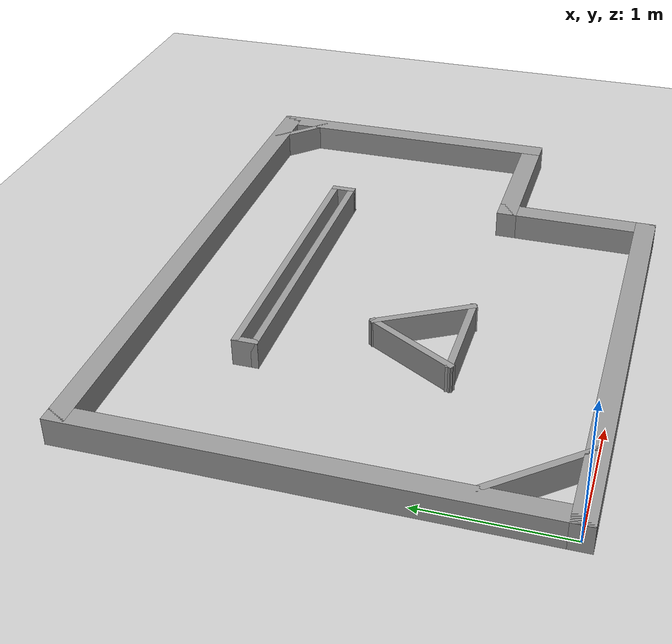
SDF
<sdf version="1.6">
 <world name="default">
  <light name="sun" type="directional">
   <pose>0 0 10 0 -0 0</pose>
   <diffuse>0.8 0.8 0.8 1</diffuse>
   <specular>0.1 0.1 0.1 1</specular>
   <attenuation>
    <range>1000</range>
    <constant>0.9</constant>
    <linear>0.01</linear>
    <quadratic>0.001</quadratic>
   </attenuation>
   <direction>-0.5 0.5 -1</direction>
  </light>
  <model name="ground_plane">
   <static>1</static>
   <link name="link">
    <collision name="collision">
     <geometry><plane><normal>0 0 1</normal><size>100 100</size></plane></geometry>
     <surface><friction><ode><mu>100</mu><mu2>50</mu2></ode></friction></surface>
    </collision>
    <visual name="visual">
     <cast_shadows>0</cast_shadows>
     <geometry><plane><normal>0 0 1</normal><size>100 100</size></plane></geometry>
     <material>
      <script><uri>file://media/materials/scripts/gazebo.material</uri><name>Gazebo/Grey</name></script>
     </material>
    </visual>
   </link>
  </model>
  <gravity>0 0 -9.8</gravity>
  <magnetic_field>6e-06 2.3e-05 -4.2e-05</magnetic_field>
  <atmosphere type="adiabatic"/>
  <physics name="default_physics" default="0" type="ode">
   <max_step_size>0.001</max_step_size>
   <real_time_factor>1</real_time_factor>
   <real_time_update_rate>1000</real_time_update_rate>
  </physics>
  <scene><ambient>0.4 0.4 0.4 1</ambient><background>0.7 0.7 0.7 1</background><shadows>1</shadows></scene>
  <spherical_coordinates>
   <surface_model>EARTH_WGS84</surface_model>
   <latitude_deg>0</latitude_deg>
   <longitude_deg>0</longitude_deg>
   <elevation>0</elevation>
   <heading_deg>0</heading_deg>
  </spherical_coordinates>
  <model name="rssmap">
   <pose>2.125 1.6 0 0 -0 0</pose>
   <link name="Wall_37">
    <collision name="Wall_37_Collision">
     <geometry><box><size>3.35 0.15 0.2</size></box></geometry>
     <pose>0 0 0.1 0 -0 0</pose>
    </collision>
    <visual name="Wall_37_Visual">
     <pose>0 0 0.1 0 -0 0</pose>
     <geometry><box><size>3.35 0.15 0.2</size></box></geometry>
     <material>
      <script><uri>file://media/materials/scripts/gazebo.material</uri><name>Gazebo/Grey</name></script>
      <ambient>1 1 1 1</ambient>
     </material>
    </visual>
    <pose>-0.525 -1.6 0 0 -0 0</pose>
   </link>
   <link name="Wall_39">
    <collision name="Wall_39_Collision">
     <geometry><box><size>3.35 0.15 0.2</size></box></geometry>
     <pose>0 0 0.1 0 -0 0</pose>
    </collision>
    <visual name="Wall_39_Visual">
     <pose>0 0 0.1 0 -0 0</pose>
     <geometry><box><size>3.35 0.15 0.2</size></box></geometry>
     <material>
      <script><uri>file://media/materials/scripts/gazebo.material</uri><name>Gazebo/Grey</name></script>
      <ambient>1 1 1 1</ambient>
     </material>
    </visual>
    <pose>-2.125 0 0 0 -0 1.5708</pose>
   </link>
   <link name="Wall_41">
    <collision name="Wall_41_Collision">
     <geometry><box><size>4.4 0.15 0.2</size></box></geometry>
     <pose>0 0 0.1 0 -0 0</pose>
    </collision>
    <visual name="Wall_41_Visual">
     <pose>0 0 0.1 0 -0 0</pose>
     <geometry><box><size>4.4 0.15 0.2</size></box></geometry>
     <material>
      <script><uri>file://media/materials/scripts/gazebo.material</uri><name>Gazebo/Grey</name></script>
      <ambient>1 1 1 1</ambient>
     </material>
    </visual>
    <pose>0 1.6 0 0 -0 0</pose>
   </link>
   <link name="Wall_43">
    <collision name="Wall_43_Collision">
     <geometry><box><size>2.3 0.15 0.2</size></box></geometry>
     <pose>0 0 0.1 0 -0 0</pose>
    </collision>
    <visual name="Wall_43_Visual">
     <pose>0 0 0.1 0 -0 0</pose>
     <geometry><box><size>2.3 0.15 0.2</size></box></geometry>
     <material>
      <script><uri>file://media/materials/scripts/gazebo.material</uri><name>Gazebo/Grey</name></script>
      <ambient>1 1 1 1</ambient>
     </material>
    </visual>
    <pose>2.125 0.525 0 0 0 -1.5708</pose>
   </link>
   <link name="Wall_45">
    <collision name="Wall_45_Collision">
     <geometry><box><size>1.2 0.15 0.2</size></box></geometry>
     <pose>0 0 0.1 0 -0 0</pose>
    </collision>
    <visual name="Wall_45_Visual">
     <pose>0 0 0.1 0 -0 0</pose>
     <geometry><box><size>1.2 0.15 0.2</size></box></geometry>
     <material>
      <script><uri>file://media/materials/scripts/gazebo.material</uri><name>Gazebo/Grey</name></script>
      <ambient>1 1 1 1</ambient>
     </material>
    </visual>
    <pose>1.6 -0.55 0 0 -0 3.14159</pose>
   </link>
   <link name="Wall_47">
    <collision name="Wall_47_Collision">
     <geometry><box><size>1.2 0.15 0.2</size></box></geometry>
     <pose>0 0 0.1 0 -0 0</pose>
    </collision>
    <visual name="Wall_47_Visual">
     <pose>0 0 0.1 0 -0 0</pose>
     <geometry><box><size>1.2 0.15 0.2</size></box></geometry>
     <material>
      <script><uri>file://media/materials/scripts/gazebo.material</uri><name>Gazebo/Grey</name></script>
      <ambient>1 1 1 1</ambient>
     </material>
    </visual>
    <pose>1.075 -1.075 0 0 0 -1.5708</pose>
   </link>
   <link name="Wall_49">
    <collision name="Wall_49_Collision">
     <geometry><box><size>0.936707 0.05 0.2</size></box></geometry>
     <pose>0 0 0.1 0 -0 0</pose>
    </collision>
    <visual name="Wall_49_Visual">
     <pose>0 0 0.1 0 -0 0</pose>
     <geometry><box><size>0.936707 0.05 0.2</size></box></geometry>
     <material>
      <script><uri>file://media/materials/scripts/gazebo.material</uri><name>Gazebo/Grey</name></script>
      <ambient>1 1 1 1</ambient>
     </material>
    </visual>
    <pose>-1.8375 -1.2625 0 0 0 -0.865228</pose>
   </link>
   <link name="Wall_54">
    <collision name="Wall_54_Collision">
     <geometry><box><size>0.509619 0.05 0.2</size></box></geometry>
     <pose>0 0 0.1 0 -0 0</pose>
    </collision>
    <visual name="Wall_54_Visual">
     <pose>0 0 0.1 0 -0 0</pose>
     <geometry><box><size>0.509619 0.05 0.2</size></box></geometry>
     <material>
      <script><uri>file://media/materials/scripts/gazebo.material</uri><name>Gazebo/Grey</name></script>
      <ambient>1 1 1 1</ambient>
     </material>
    </visual>
    <pose>1.9625 1.4375 0 0 0 -0.785398</pose>
   </link>
   <link name="Wall_56">
    <collision name="Wall_56_Collision">
     <geometry><box><size>2.2 0.05 0.2</size></box></geometry>
     <pose>0 0 0.1 0 -0 0</pose>
    </collision>
    <visual name="Wall_56_Visual">
     <pose>0 0 0.1 0 -0 0</pose>
     <geometry><box><size>2.2 0.05 0.2</size></box></geometry>
     <material>
      <script><uri>file://media/materials/scripts/gazebo.material</uri><name>Gazebo/Grey</name></script>
      <ambient>1 1 1 1</ambient>
     </material>
    </visual>
    <pose>-0.025 0.715 0 0 -0 0</pose>
   </link>
   <link name="Wall_58">
    <collision name="Wall_58_Collision">
     <geometry><box><size>0.185 0.05 0.2</size></box></geometry>
     <pose>0 0 0.1 0 -0 0</pose>
    </collision>
    <visual name="Wall_58_Visual">
     <pose>0 0 0.1 0 -0 0</pose>
     <geometry><box><size>0.185 0.05 0.2</size></box></geometry>
     <material>
      <script><uri>file://media/materials/scripts/gazebo.material</uri><name>Gazebo/Grey</name></script>
      <ambient>1 1 1 1</ambient>
     </material>
    </visual>
    <pose>-1.1 0.7825 0 0 -0 1.5708</pose>
   </link>
   <link name="Wall_63">
    <collision name="Wall_63_Collision">
     <geometry><box><size>0.185 0.05 0.2</size></box></geometry>
     <pose>0 0 0.1 0 -0 0</pose>
    </collision>
    <visual name="Wall_63_Visual">
     <pose>0 0 0.1 0 -0 0</pose>
     <geometry><box><size>0.185 0.05 0.2</size></box></geometry>
     <material>
      <script><uri>file://media/materials/scripts/gazebo.material</uri><name>Gazebo/Grey</name></script>
      <ambient>1 1 1 1</ambient>
     </material>
    </visual>
    <pose>1.05 0.7825 0 0 -0 1.5708</pose>
   </link>
   <link name="Wall_70">
    <collision name="Wall_70_Collision">
     <geometry><box><size>2.2 0.05 0.2</size></box></geometry>
     <pose>0 0 0.1 0 -0 0</pose>
    </collision>
    <visual name="Wall_70_Visual">
     <pose>0 0 0.1 0 -0 0</pose>
     <geometry><box><size>2.2 0.05 0.2</size></box></geometry>
     <material>
      <script><uri>file://media/materials/scripts/gazebo.material</uri><name>Gazebo/Grey</name></script>
      <ambient>1 1 1 1</ambient>
     </material>
    </visual>
    <pose>-0.025 0.85 0 0 -0 0</pose>
   </link>
   <link name="Wall_72">
    <collision name="Wall_72_Collision">
     <geometry><box><size>0.75 0.05 0.2</size></box></geometry>
     <pose>0 0 0.1 0 -0 0</pose>
    </collision>
    <visual name="Wall_72_Visual">
     <pose>0 0 0.1 0 -0 0</pose>
     <geometry><box><size>0.75 0.05 0.2</size></box></geometry>
     <material>
      <script><uri>file://media/materials/scripts/gazebo.material</uri><name>Gazebo/Grey</name></script>
      <ambient>1 1 1 1</ambient>
     </material>
    </visual>
    <pose>-0.65 -0.575 0 0 -0 0</pose>
   </link>
   <link name="Wall_74">
    <collision name="Wall_74_Collision">
     <geometry><box><size>0.750678 0.05 0.2</size></box></geometry>
     <pose>0 0 0.1 0 -0 0</pose>
    </collision>
    <visual name="Wall_74_Visual">
     <pose>0 0 0.1 0 -0 0</pose>
     <geometry><box><size>0.750678 0.05 0.2</size></box></geometry>
     <material>
      <script><uri>file://media/materials/scripts/gazebo.material</uri><name>Gazebo/Grey</name></script>
      <ambient>1 1 1 1</ambient>
     </material>
    </visual>
    <pose>-0.825 -0.272 0 0 -0 1.04704</pose>
   </link>
   <link name="Wall_76">
    <collision name="Wall_76_Collision">
     <geometry><box><size>0.749811 0.05 0.2</size></box></geometry>
     <pose>0 0 0.1 0 -0 0</pose>
    </collision>
    <visual name="Wall_76_Visual">
     <pose>0 0 0.1 0 -0 0</pose>
     <geometry><box><size>0.749811 0.05 0.2</size></box></geometry>
     <material>
      <script><uri>file://media/materials/scripts/gazebo.material</uri><name>Gazebo/Grey</name></script>
      <ambient>1 1 1 1</ambient>
     </material>
    </visual>
    <pose>-0.475 -0.272 0 0 -0 2.09455</pose>
   </link>
   <static>1</static>
  </model>
 </world>
</sdf>
